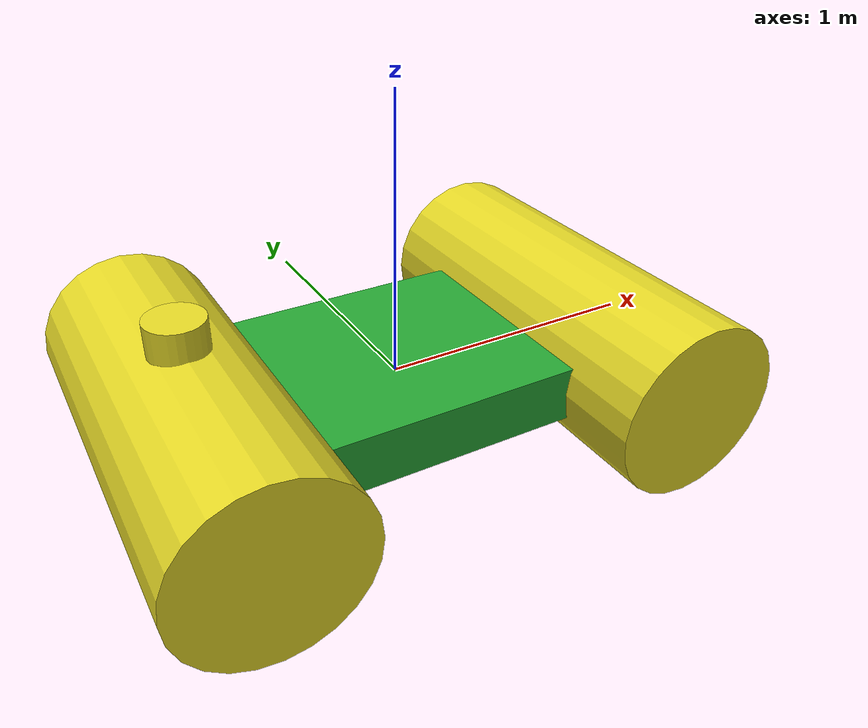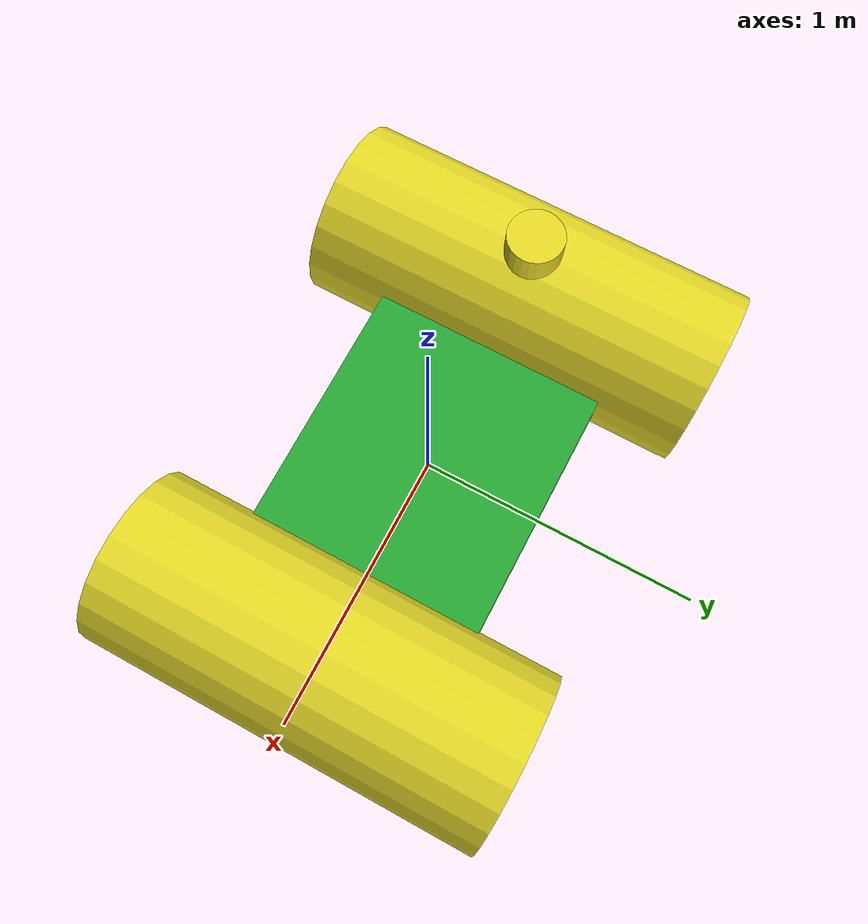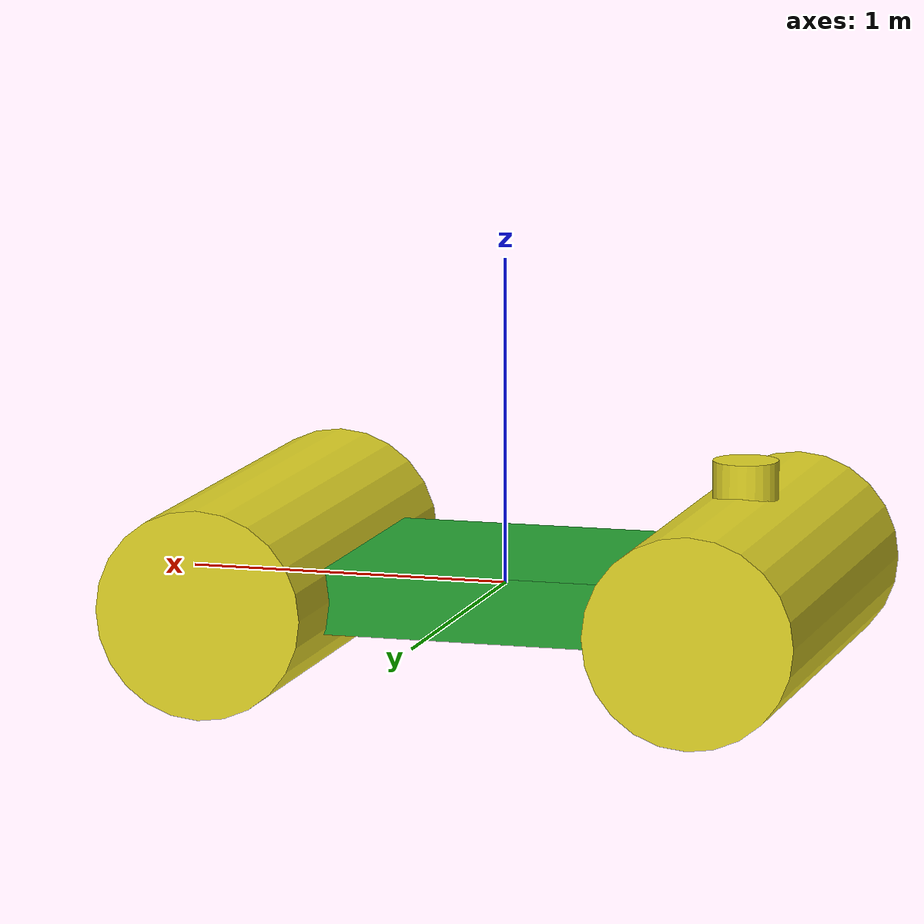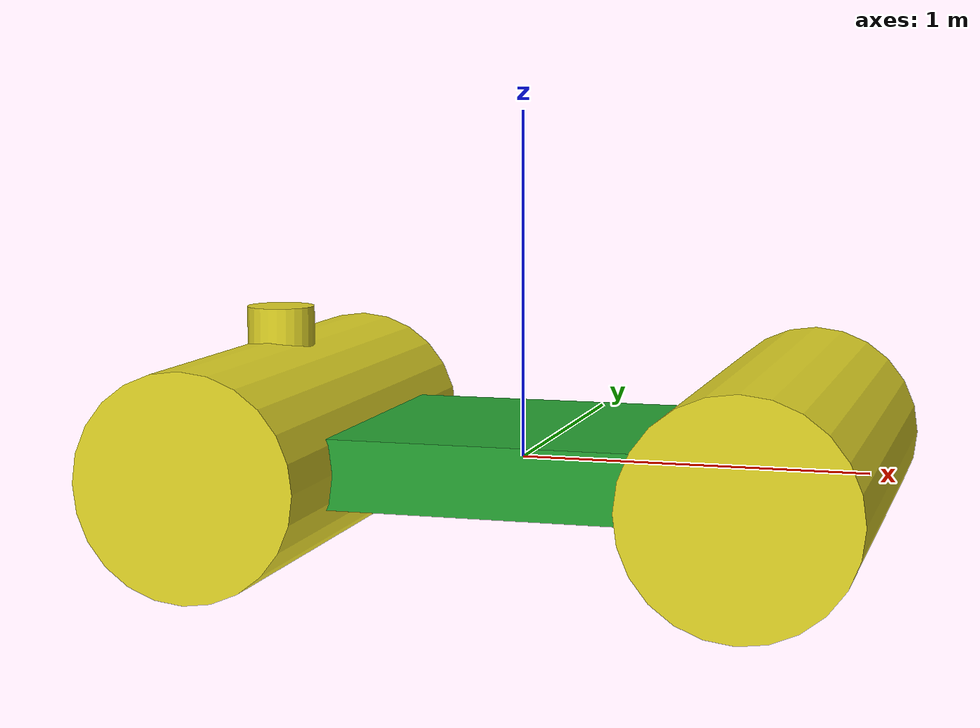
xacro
<?xml version="1.0"?>
<robot name="clay_roller_bot" xmlns:xacro="http://wiki.ros.org/xacro">
  <!-- Include xacro for inertials, materials and wheels -->
  <xacro:include filename="$(find steer_bot_description)/urdf/wheel.xacro"/>

  <xacro:property name="robot_namespace" value="/clay_roller_bot"/>

  <!-- Gazebo plugins -->
  <gazebo>
    <!-- Load ros_control plugin -->
    <plugin name="gazebo_ros_control" filename="libgazebo_ros_control.so">
      <robotNamespace>${robot_namespace}</robotNamespace>
      <robotSimType>gazebo_ros_control/DefaultRobotHWSim</robotSimType>
      <legacyModeNS>false</legacyModeNS>
    </plugin>

    <!-- Load gazebo_ros plugin. Publish passive (non-actuated) joints from Gazebo -->
    <plugin name="gazebo_ros_joint_state_publisher" filename="libgazebo_ros_joint_state_publisher.so">
        <robotNamespace>${robot_namespace}</robotNamespace>
        <jointName>
            rear_wheel_joint
        </jointName>
        <jointName>
            front_wheel_footprint_joint
        </jointName>
        <updateRate>50</updateRate>
        <alwaysOn>true</alwaysOn>
    </plugin>

    <plugin name="p3d_base_controller" filename="libgazebo_ros_p3d.so">
      <alwaysOn>true</alwaysOn>
      <updateRate>50.0</updateRate>
      <bodyName>base_link</bodyName>
      <topicName>ground_truth/state</topicName>
      <gaussianNoise>0.01</gaussianNoise>
      <frameName>world</frameName>
      <xyzOffsets>0 0 0</xyzOffsets>
      <rpyOffsets>0 0 0</rpyOffsets>
    </plugin>
  </gazebo>

  <!-- Math constants -->
  <xacro:property name="deg_to_rad" value="0.01745329251994329577"/>

  <!-- Robot base dimensions -->
  <xacro:property name="base_length" value="1.5" />
  <xacro:property name="base_width" value="0.85" />
  <xacro:property name="base_height" value="0.2" />
  <xacro:property name="base_mass" value="5" /> <!--Check later-->

  <!-- Wheel link dimensions -->
  <xacro:property name="wheel_radius" value="0.3183" />
  <xacro:property name="wheel_thickness" value="1.45" />
  <xacro:property name="wheel_mass" value="1" />

  <!-- Steering link dimensions -->
  <xacro:property name="steer_radius" value="0.1" />
  <xacro:property name="steer_thickness" value="0.2" />
  <xacro:property name="steer_mass" value="1" />

  <!-- Axle positions -->
  <xacro:property name="axle_offset" value="0.00" />
  <xacro:property name="steer_offset" value="0.00" />

  <!-- Base link -->
  <link name="base_link">
    <visual>
      <origin xyz="0 0 0" rpy="0 0 0"/>
      <geometry>
        <box size="${base_length} ${base_width} ${base_height}"/>
      </geometry>
      <material name="green" />
    </visual>
    <collision>
      <origin xyz="0 0 0" rpy="0 0 0"/>
      <geometry>
        <box size="${base_length} ${base_width} ${base_height}"/>
      </geometry>
    </collision>
    <xacro:solid_cuboid_inertial
        rpy="0 0 0" xyz="0 0 0"
        mass="${base_mass}"
        x="${base_length}" y="${base_width}" z="${base_height}" />
  </link>

  <!-- Non rotating forward wheel link -->
  <link name="front_footprint"/>
  <joint name="front_wheel_footprint_joint" type="fixed">
    <parent link="base_link"/>
    <child link="front_footprint"/>
    <origin xyz="${+base_length/2+axle_offset} 0 0" rpy="0 0 0"/>
  </joint>

  <!-- Front wheel and rear steer joints required for ackermann_steering_controller -->
  <xacro:rear_steer
    name="rear"
    parent="base"
    steer_radius="${steer_radius}"
    steer_thickness="${steer_thickness}"
    steer_mass="${steer_mass}"
    base_length="${base_length}"
    base_width="${base_width}"
    axle_offset="${axle_offset}"
    steer_height="${wheel_radius+steer_offset}">
  </xacro:rear_steer>

  <!-- Passive Joint ! required-->
  <xacro:rear_wheel
    name="rear"
    parent="rear_steer"
    wheel_radius="${wheel_radius}"
    wheel_thickness="${wheel_thickness}"
    wheel_mass="${wheel_mass}">
    <origin xyz="0 0 ${-wheel_radius-steer_offset}" rpy="${-90 * deg_to_rad} 0 0"/>
  </xacro:rear_wheel>

  <xacro:front_wheel
    name="front"
    parent="base"
    wheel_radius="${wheel_radius}"
    wheel_thickness="${wheel_thickness}"
    wheel_mass="${wheel_mass}">
    <origin xyz="${+base_length/2+axle_offset} 0 0" rpy="${-90 * deg_to_rad} 0 0"/>
  </xacro:front_wheel>

  <!-- Colour -->
  <gazebo reference="base_link">
    <material>Gazebo/Green</material>
  </gazebo>

</robot>

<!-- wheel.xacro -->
<robot name="wheel" xmlns:xacro="http://wiki.ros.org/xacro">
  <!-- Include xacro for materials and inertials -->
  <xacro:include filename="$(find steer_bot_description)/urdf/materials.xacro"/>
  <xacro:include filename="$(find steer_bot_description)/urdf/inertials.xacro"/>

  <!-- Properties -->
  <xacro:property name="steer_effort" value="10.0"/>
  <xacro:property name="steer_velocity" value="5.0"/>
  <xacro:property name="steer_limit_deg" value="25.0"/>

  <!-- Bicycle model rear steering link (required for steer_drive_controller) -->
  <xacro:macro name="rear_steer"
    params="
      name
      parent
      steer_radius
      steer_thickness
      steer_mass
      base_length
      base_width
      axle_offset
      steer_height">
    <link name="${name}_steer_link">
      <visual>
        <origin xyz="0 0 0" rpy="0 0 0"/>
        <geometry>
          <cylinder radius="${steer_radius}" length="${steer_thickness}"/>
        </geometry>
        <material name="yellow" />
      </visual>
      <collision>
        <origin xyz="0 0 0" rpy="0 0 0"/>
        <geometry>
          <cylinder radius="${steer_radius}" length="${steer_thickness}"/>
        </geometry>
      </collision>
      <xacro:solid_cylinder_inertial
          rpy="0 0 0" xyz="0 0 0"
          mass="${steer_mass}"
          radius="${steer_radius}" length="${steer_thickness}" />
    </link>

    <joint name="${name}_steer_joint" type="revolute">
      <parent link="${parent}_link"/>
      <child link="${name}_steer_link"/>
      <origin xyz="${-base_length/2-axle_offset} 0 ${steer_height}" rpy="0 0 0"/>
      <axis xyz="0 0 1"/>
      <limit effort="${steer_effort}"
             lower="${-180.0 * deg_to_rad}" upper="${180.0 * deg_to_rad}"
             velocity="${steer_velocity}"/>
    </joint>

    <transmission name="${name}_steer_joint_trans">
      <type>transmission_interface/SimpleTransmission</type>
      <actuator name="${name}_steer_joint_motor">
        <mechanicalReduction>1</mechanicalReduction>
        <hardwareInterface>hardware_interface/PositionJointInterface</hardwareInterface>
      </actuator>
      <joint name="${name}_steer_joint">
        <hardwareInterface>hardware_interface/PositionJointInterface</hardwareInterface>
      </joint>
    </transmission>

    <gazebo reference="${name}_steer_link">
      <material>Gazebo/Yellow</material>
    </gazebo>
  </xacro:macro>

  <!-- Bicycle model front wheel link (required for steer_drive_controller) -->
  <xacro:macro name="front_wheel"
    params="
      name
      parent
      wheel_radius
      wheel_thickness
      wheel_mass
      *origin">
    <link name="${name}_wheel_link">
      <visual>
        <origin xyz="0 0 0" rpy="0 0 0"/>
        <geometry>
          <cylinder radius="${wheel_radius}" length="${wheel_thickness}"/>
        </geometry>
        <material name="yellow" />
      </visual>
      <collision>
        <origin xyz="0 0 0" rpy="0 0 0"/>
        <geometry>
          <cylinder radius="${wheel_radius}" length="${wheel_thickness}"/>
        </geometry>
      </collision>
      <xacro:solid_cylinder_inertial
          rpy="0 0 0" xyz="0 0 0"
          mass="${wheel_mass}"
          radius="${wheel_radius}" length="${wheel_thickness}" />
    </link>

    <joint name="${name}_wheel_joint" type="continuous">
      <parent link="${parent}_link"/>
      <child link="${name}_wheel_link"/>
      <xacro:insert_block name="origin"/>
      <axis xyz="0 0 1"/>
    </joint>

    <transmission name="${name}_wheel_joint_trans">
      <type>transmission_interface/SimpleTransmission</type>
      <actuator name="${name}_wheel_joint_motor">
        <mechanicalReduction>1</mechanicalReduction>
        <hardwareInterface>hardware_interface/VelocityJointInterface</hardwareInterface>
      </actuator>
      <joint name="${name}_wheel_joint">
        <hardwareInterface>hardware_interface/VelocityJointInterface</hardwareInterface>
      </joint>
    </transmission>

    <gazebo reference="${name}_wheel_link">
      <material>Gazebo/Yellow</material>
    </gazebo>
  </xacro:macro>

  <!-- Bicycle model rear wheel link (passive - no transmission) -->
  <xacro:macro name="rear_wheel"
    params="
      name
      parent
      wheel_radius
      wheel_thickness
      wheel_mass
      *origin">
    <link name="${name}_wheel_link">
      <visual>
        <origin xyz="0 0 0" rpy="0 0 0"/>
        <geometry>
          <cylinder radius="${wheel_radius}" length="${wheel_thickness}"/>
        </geometry>
        <material name="yellow" />
      </visual>
      <collision>
        <origin xyz="0 0 0" rpy="0 0 0"/>
        <geometry>
          <cylinder radius="${wheel_radius}" length="${wheel_thickness}"/>
        </geometry>
      </collision>
      <xacro:solid_cylinder_inertial
          rpy="0 0 0" xyz="0 0 0"
          mass="${wheel_mass}"
          radius="${wheel_radius}" length="${wheel_thickness}" />
    </link>

    <joint name="${name}_wheel_joint" type="continuous">
      <parent link="${parent}_link"/>
      <child link="${name}_wheel_link"/>
      <xacro:insert_block name="origin"/>
      <axis xyz="0 0 1"/>
    </joint>

    <gazebo reference="${name}_wheel_link">
      <material>Gazebo/Yellow</material>
    </gazebo>

    <gazebo reference="${name}_wheel_joint">
      <provideFeedback>true</provideFeedback>
    </gazebo>
  </xacro:macro>

</robot>
